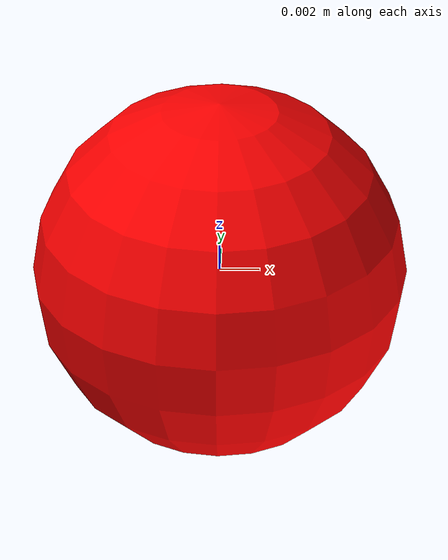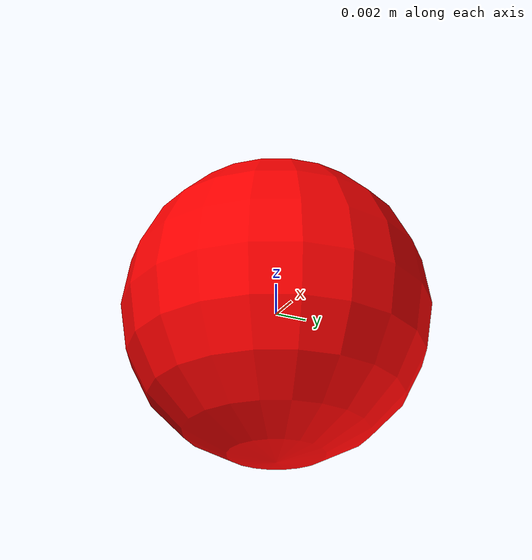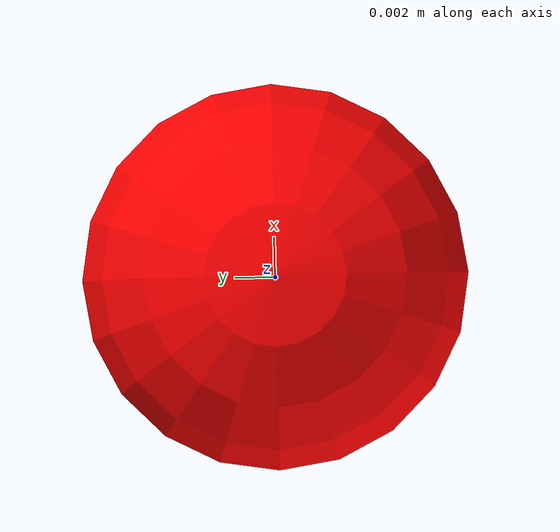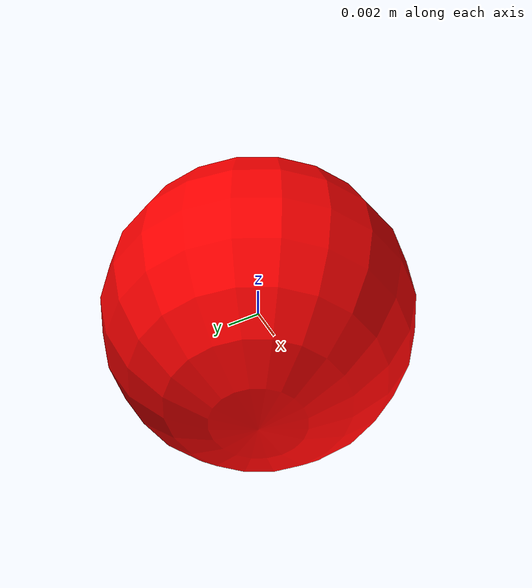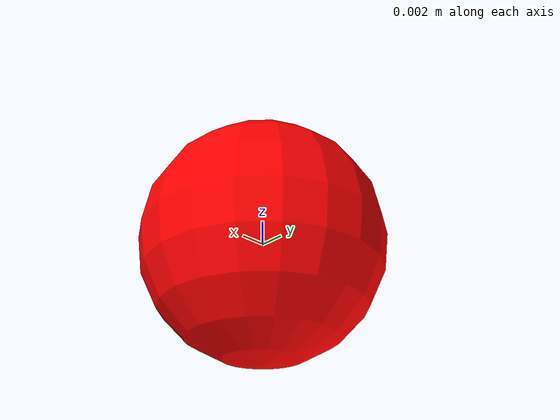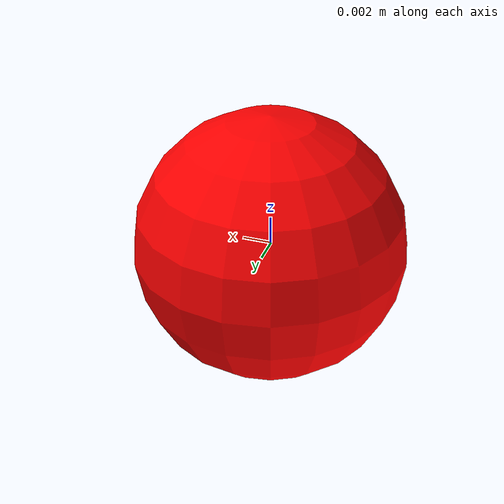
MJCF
<mujoco model="simplified_trifinger">
  <compiler angle="radian" meshdir="assets" autolimits="true"/>

  <option timestep="0.001"/>

  <worldbody>
    <light name="top" pos="0 0 2" mode="trackcom"/>
    <body name="fingertip0">
      <geom type="sphere" size="0.0095" mass="0.1" priority="1" condim="3" friction="0.5 .01 .003" rgba="1.0 0 0 1"/>
      <joint name="fingetip0_x" type="slide" range="-0.06 0.02" axis="1 0 0" limited="true"/>
      <joint name="fingetip0_y" type="slide" range="0.01 0.09" axis="0 1 0" limited="true"/>
      <joint name="fingetip0_z" type="slide" range="0.028 0.033" axis="0 0 1" limited="true"/>
      <site name="fingertip0" pos="0 0 0.0" group="3"/>
    </body>
    <body name="fingertip1">
      <geom type="sphere" size="0.0095" mass="0.1" priority="1" condim="3" friction="0.5 .01 .003" rgba="0.0 1.0 0 1"/>
      <joint name="fingertip1_x" type="slide" range="-0.06 0.02" axis="1 0 0" limited="true"/>
      <joint name="fingertip1_y" type="slide" range="-0.09 0.01" axis="0 1 0" limited="true"/>
      <joint name="fingertip1_z" type="slide" range="0.028 0.033" axis="0 0 1" limited="true"/>
      <site name="fingertip1" pos="0 0 0.0" group="3"/>
    </body>
    <body name="fingertip2">
      <geom type="sphere" size="0.0095" mass="0.1" priority="1" condim="3" friction="0.5 .01 .003" rgba="0 0 1.0 1"/>
      <joint name="fingertip2_x" type="slide" range="0.01 0.09" axis="1 0 0" limited="true"/>
      <joint name="fingertip2_y" type="slide" range="-0.04 0.04" axis="0 1 0" limited="true"/>
      <joint name="fingertip2_z" type="slide" range="0.028 0.033" axis="0 0 1" limited="true"/>
      <site name="fingertip2" pos="0 0 0.0" group="3"/>
    </body>
  </worldbody>

  <actuator>
    <general site="fingertip0" refsite="world" gaintype="fixed" forcerange="-2 2" ctrlrange="-2 2" forcelimited="true" ctrllimited="true" gainprm="1" gear="1 0 0 0 0 0"/>
    <general site="fingertip0" refsite="world" gaintype="fixed" forcerange="-2 2" ctrlrange="-2 2" forcelimited="true" ctrllimited="true" gainprm="1" gear="0 1 0 0 0 0"/>
    <general site="fingertip0" refsite="world" gaintype="fixed" forcerange="-2 2" ctrlrange="-2 2" forcelimited="true" ctrllimited="true" gainprm="1" gear="0 0 1 0 0 0"/>
    <general site="fingertip1" refsite="world" gaintype="fixed" forcerange="-2 2" ctrlrange="-2 2" forcelimited="true" ctrllimited="true" gainprm="1" gear="1 0 0 0 0 0"/>
    <general site="fingertip1" refsite="world" gaintype="fixed" forcerange="-2 2" ctrlrange="-2 2" forcelimited="true" ctrllimited="true" gainprm="1" gear="0 1 0 0 0 0"/>
    <general site="fingertip1" refsite="world" gaintype="fixed" forcerange="-2 2" ctrlrange="-2 2" forcelimited="true" ctrllimited="true" gainprm="1" gear="0 0 1 0 0 0"/>
    <general site="fingertip2" refsite="world" gaintype="fixed" forcerange="-2 2" ctrlrange="-2 2" forcelimited="true" ctrllimited="true" gainprm="1" gear="1 0 0 0 0 0"/>
    <general site="fingertip2" refsite="world" gaintype="fixed" forcerange="-2 2" ctrlrange="-2 2" forcelimited="true" ctrllimited="true" gainprm="1" gear="0 1 0 0 0 0"/>
    <general site="fingertip2" refsite="world" gaintype="fixed" forcerange="-2 2" ctrlrange="-2 2" forcelimited="true" ctrllimited="true" gainprm="1" gear="0 0 1 0 0 0"/>
  </actuator>
</mujoco>
